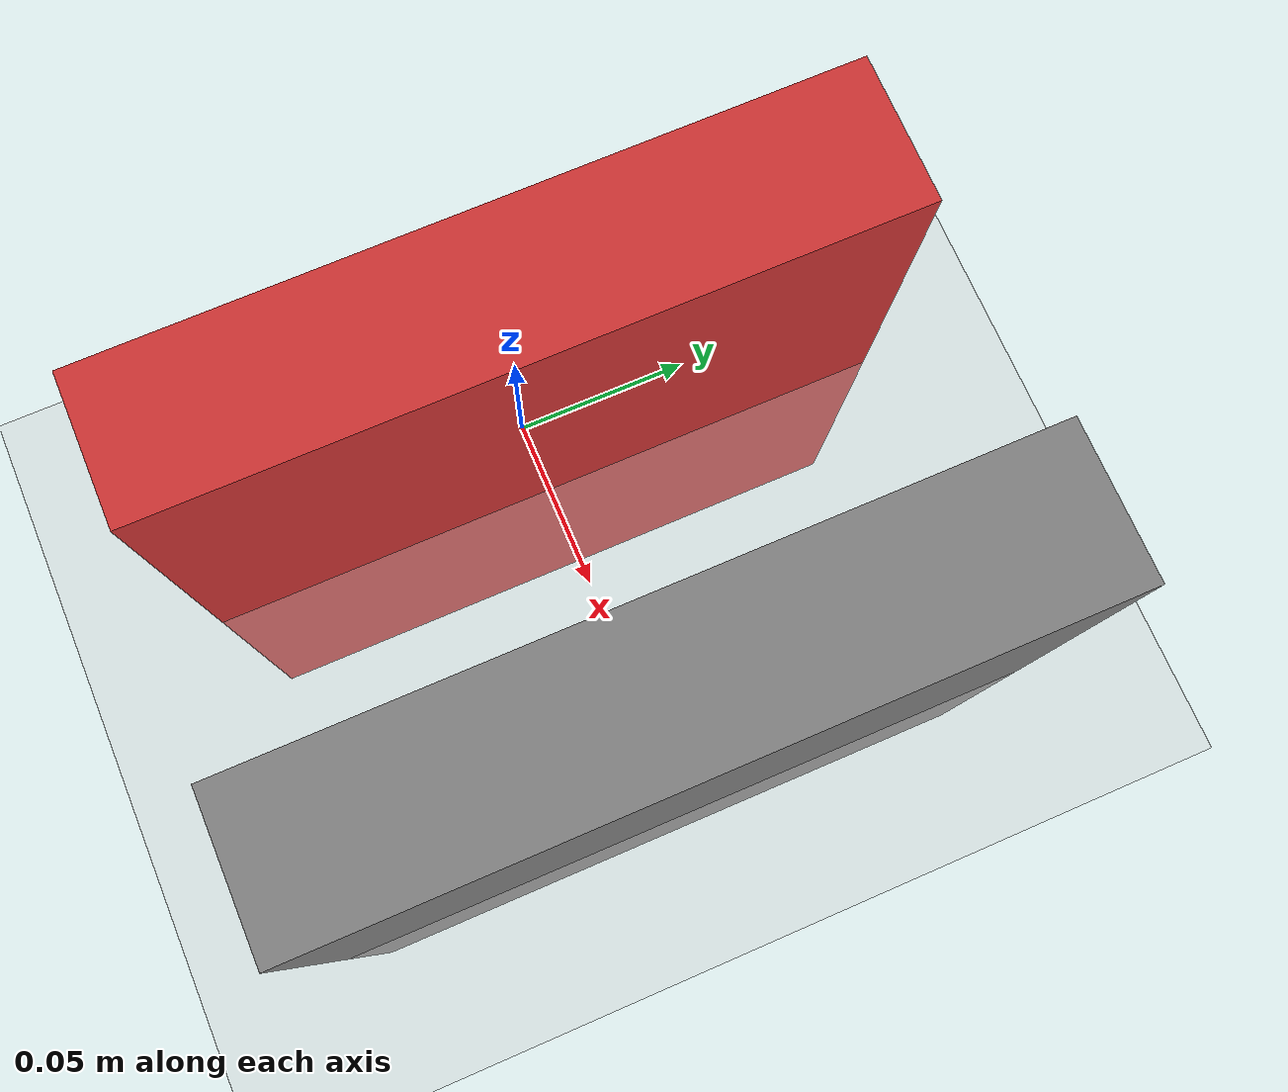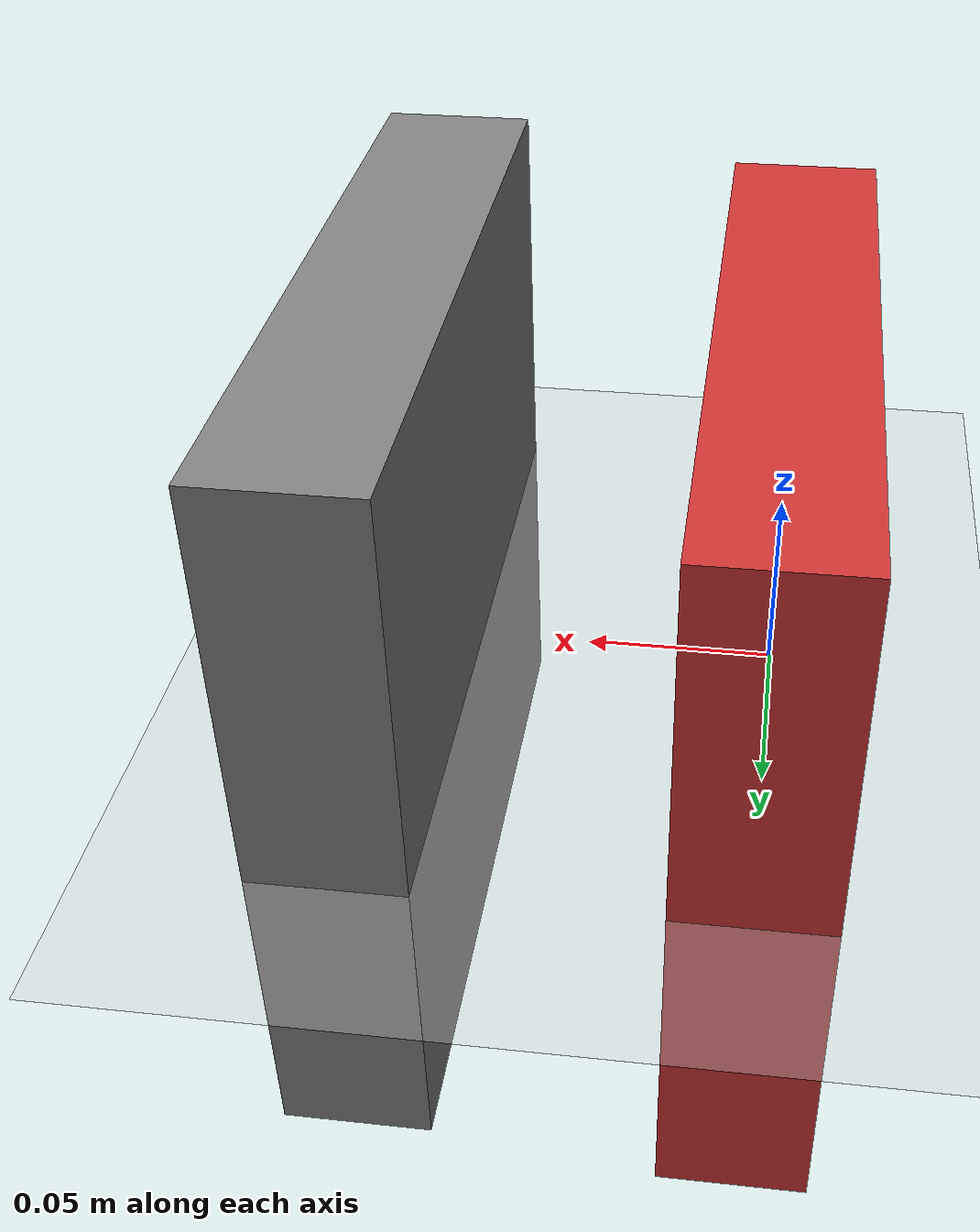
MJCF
<mujoco model="horizontal_spring_mass">
    <compiler angle="degree" coordinate="local" />
    <option gravity="0 0 -9.81" /> <!-- Gravity in the negative z-direction -->

    <!-- Default settings for bodies, joints, and geom properties -->
    <default>
        <joint damping="0.5" limited="true"/>
        <geom density="1000" friction="0.5 0.1 0.1"/>
    </default>
    <asset>
        <!-- Checker texture for grid pattern -->
        <texture name="grid" type="2d" builtin="checker" width="512" height="512" rgb1="0.9 0.9 0.9" rgb2="0.8 0.8 0.8" />
        <!-- Material for ground using the grid texture -->
        <material name="grid_material" texture="grid" texrepeat="5 5" reflectance="0.2"/>
    </asset>
    <!-- World body -->
    <worldbody>
        <light directional="true" cutoff="4" exponent="20" diffuse="1 1 1" specular="0 0 0" pos=".9 .3 2.5" dir="-.9 -.3 -2.5 "/>
        <camera name="cam1" pos="0.000 -1.414 1.414" xyaxes="1.000 -0.000 0.000 0.000 0.707 0.707"/>

        <!-- Ground plane -->
        <geom name="ground" type="plane" size="0 0 0.1" rgba="0.8 0.8 0.8 1" material="grid_material"/>

        <!-- A fixed body to attach the spring to -->
        <body name="base" pos="0 0 0">
            <!-- Geom representing the base -->
            <geom name="base_geom" type="box" size="0.02 0.1 0.1" rgba="0.8 0.2 0.2 1"/>
        </body>

        <!-- Placeholder cuboidal mass body, representing the spring anchor -->
        <body name="small_mass" pos="0.1 0 0.01"> <!-- Adjusted position -->
            <!-- Cuboidal mass geometry (slender shape) -->
            <geom name="mass_geom" type="box" size="0.02 0.1 0.1" mass="0.01" rgba="0.5 0.5 0.5 1"/>

            <!-- Joint for the mass to allow movement along the x-axis -->
            <joint name="mass_joint" type="slide" axis="1 0 0" range="-1 1" stiffness="20" springref="0.1"/>
        </body>
    </worldbody>

    <actuator>
        <motor joint="mass_joint" forcerange="-20 20" ctrlrange="-10 10"/>
    </actuator>
</mujoco>
